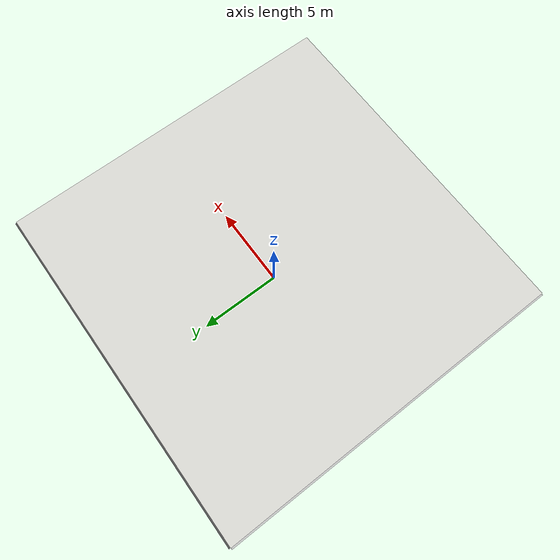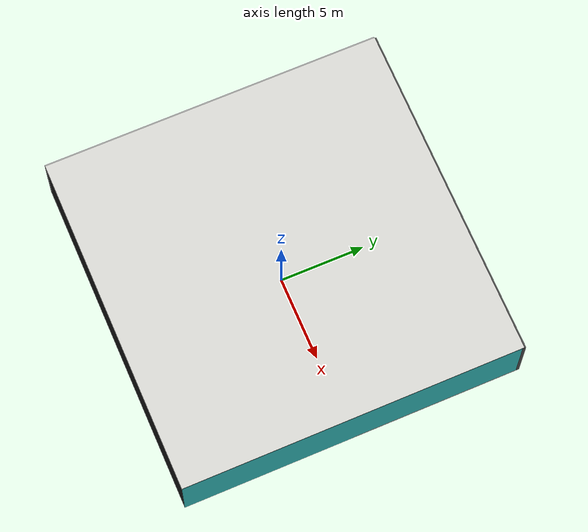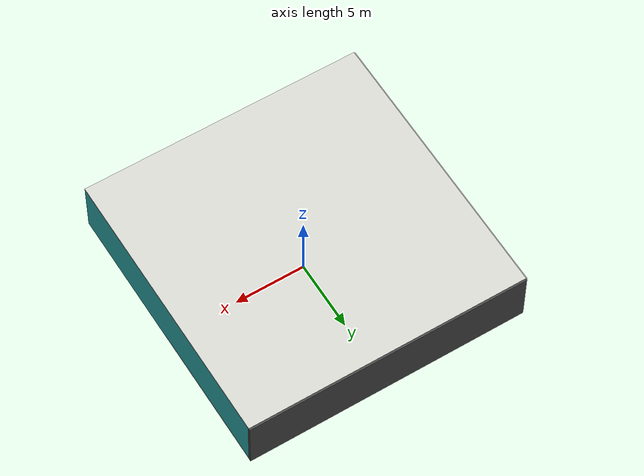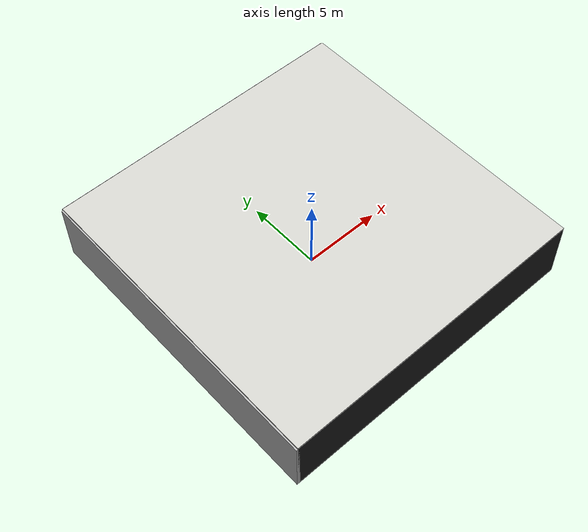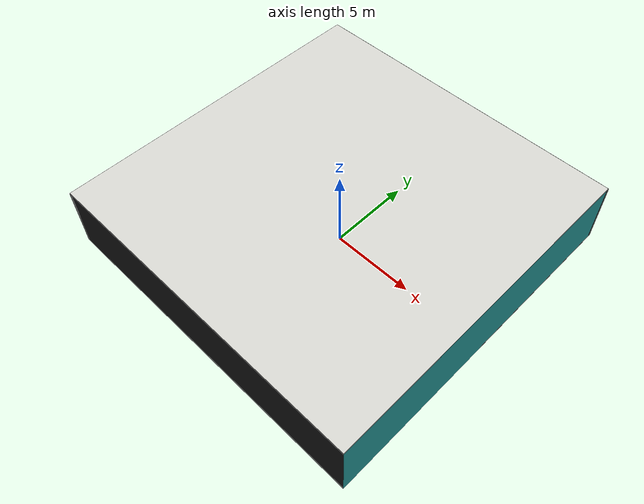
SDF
<sdf version="1.4">
 <world name="default">
  <physics type="ode">
   <max_step_size>0.001</max_step_size>
   <real_time_factor>1</real_time_factor>
   <real_time_update_rate>1000</real_time_update_rate>
   <gravity>0 0 -9.8</gravity>
  </physics>
  <scene><ambient>0.4 0.4 0.4 1</ambient><background>0.7 0.7 0.7 1</background><shadows>1</shadows></scene>
  <model name="Surrounding">
   <static>1</static>
   <link name="Ceiling">
    <collision name="Ceiling_Collision"><geometry><box><size>20 20 0.1</size></box></geometry></collision>
    <visual name="Ceiling_Visual">
     <geometry><box><size>20 20 0.1</size></box></geometry>
     <material>
      <script><uri>file://media/materials/scripts/gazebo.material</uri><name>Gazebo/CeilingTiled</name></script>
     </material>
    </visual>
    <pose>0 0 4.05 0 0 0</pose>
   </link>
   <link name="Wall_South">
    <collision name="Wall_South_Collision">
     <geometry><box><size>20 0 4</size></box></geometry>
     <pose>0 0 2 0 -0 0</pose>
    </collision>
    <visual name="Wall_South_Visual">
     <pose>0 0 2 0 -0 0</pose>
     <geometry><box><size>20 0 4</size></box></geometry>
     <material>
      <script><uri>file://media/materials/scripts/gazebo.material</uri><name>Gazebo/Black</name></script>
     </material>
    </visual>
    <velocity_decay><linear>0</linear><angular>0</angular></velocity_decay>
    <pose>0 -10 0 0 -0 0</pose>
   </link>
   <link name="Wall_East">
    <collision name="Wall_21_Collision">
     <geometry><box><size>20 0 4</size></box></geometry>
     <pose>0 0 2 0 -0 0</pose>
    </collision>
    <visual name="Wall_21_Visual">
     <pose>0 0 2 0 -0 0</pose>
     <geometry><box><size>20 0 4</size></box></geometry>
     <material>
      <script><uri>file://media/materials/scripts/gazebo.material</uri><name>Gazebo/Turquoise</name></script>
     </material>
    </visual>
    <velocity_decay><linear>0</linear><angular>0</angular></velocity_decay>
    <pose>10 0 0 0 -0 1.5708</pose>
   </link>
   <link name="Wall_North">
    <collision name="Wall_22_Collision">
     <geometry><box><size>20 0.2 4</size></box></geometry>
     <pose>0 0 2 0 -0 0</pose>
    </collision>
    <visual name="Wall_22_Visual">
     <pose>0 0 2 0 -0 0</pose>
     <geometry><box><size>20 0.2 4</size></box></geometry>
     <material>
      <script><uri>file://media/materials/scripts/gazebo.material</uri><name>Gazebo/Road</name></script>
     </material>
    </visual>
    <velocity_decay><linear>0</linear><angular>0</angular></velocity_decay>
    <pose>0 10 0 0 -0 0</pose>
   </link>
   <link name="Wall_West">
    <collision name="Wall_23_Collision">
     <geometry><box><size>20 0.2 4</size></box></geometry>
     <pose>0 0 2 0 -0 0</pose>
    </collision>
    <visual name="Wall_23_Visual">
     <pose>0 0 2 0 -0 0</pose>
     <geometry><box><size>20 0.2 4</size></box></geometry>
     <material>
      <script><uri>file://media/materials/scripts/gazebo.material</uri><name>Gazebo/CloudySky</name></script>
     </material>
    </visual>
    <velocity_decay><linear>0</linear><angular>0</angular></velocity_decay>
    <pose>-10 0 0 0 0 -1.5708</pose>
   </link>
   <link name="Ground_link">
    <collision name="collision">
     <pose>0 0 .05 0 -0 0</pose>
     <geometry><box><size>20 20 0.1</size></box></geometry>
    </collision>
    <visual name="visual">
     <pose>0 0 .05 0 -0 0</pose>
     <geometry><box><size>20 20 0.1</size></box></geometry>
     <material>
      <script><uri>file://media/materials/scripts/gazebo.material</uri><name>Gazebo/Black</name></script>
     </material>
    </visual>
   </link>
   <static>1</static>
  </model>
  <spherical_coordinates>
   <surface_model>EARTH_WGS84</surface_model>
   <latitude_deg>0</latitude_deg>
   <longitude_deg>0</longitude_deg>
   <elevation>0</elevation>
   <heading_deg>0</heading_deg>
  </spherical_coordinates>
  <light name="lightball_0" type="diffuse">
   <diffuse>0.8 0.8 0.8 1</diffuse>
   <specular>0.2 0.2 0.2 1</specular>
   <attenuation>
    <range>100</range>
    <constant>0.7</constant>
    <linear>0.01</linear>
    <quadratic>0.001</quadratic>
   </attenuation>
   <direction>-0.5 0.1 -0.9</direction>
   <pose>-2.76330473561 -6.65100457266 2.59917427508 0 0 0</pose>
  </light>
  <light name="lightball_1" type="diffuse">
   <diffuse>0.8 0.8 0.8 1</diffuse>
   <specular>0.2 0.2 0.2 1</specular>
   <attenuation>
    <range>100</range>
    <constant>0.7</constant>
    <linear>0.01</linear>
    <quadratic>0.001</quadratic>
   </attenuation>
   <direction>-0.5 0.1 -0.9</direction>
   <pose>-3.77103143451 7.87645592584 2.75601713917 0 0 0</pose>
  </light>
  <light name="lightball_2" type="diffuse">
   <diffuse>0.8 0.8 0.8 1</diffuse>
   <specular>0.2 0.2 0.2 1</specular>
   <attenuation>
    <range>100</range>
    <constant>0.7</constant>
    <linear>0.01</linear>
    <quadratic>0.001</quadratic>
   </attenuation>
   <direction>-0.5 0.1 -0.9</direction>
   <pose>-6.55583987825 1.42649071541 2.39451830578 0 0 0</pose>
  </light>
  <light name="lightball_3" type="diffuse">
   <diffuse>0.8 0.8 0.8 1</diffuse>
   <specular>0.2 0.2 0.2 1</specular>
   <attenuation>
    <range>100</range>
    <constant>0.7</constant>
    <linear>0.01</linear>
    <quadratic>0.001</quadratic>
   </attenuation>
   <direction>-0.5 0.1 -0.9</direction>
   <pose>-7.02942362311 -5.30311745632 1.26972713595 0 0 0</pose>
  </light>
  <light name="lightball_4" type="diffuse">
   <diffuse>0.8 0.8 0.8 1</diffuse>
   <specular>0.2 0.2 0.2 1</specular>
   <attenuation>
    <range>100</range>
    <constant>0.7</constant>
    <linear>0.01</linear>
    <quadratic>0.001</quadratic>
   </attenuation>
   <direction>-0.5 0.1 -0.9</direction>
   <pose>-8.04350715509 1.22169344275 3.43990323578 0 0 0</pose>
  </light>
  <light name="lightball_5" type="diffuse">
   <diffuse>0.8 0.8 0.8 1</diffuse>
   <specular>0.2 0.2 0.2 1</specular>
   <attenuation>
    <range>100</range>
    <constant>0.7</constant>
    <linear>0.01</linear>
    <quadratic>0.001</quadratic>
   </attenuation>
   <direction>-0.5 0.1 -0.9</direction>
   <pose>3.07001644105 9.57921117661 0.51075608337 0 0 0</pose>
  </light>
  <light name="lightball_6" type="diffuse">
   <diffuse>0.8 0.8 0.8 1</diffuse>
   <specular>0.2 0.2 0.2 1</specular>
   <attenuation>
    <range>100</range>
    <constant>0.7</constant>
    <linear>0.01</linear>
    <quadratic>0.001</quadratic>
   </attenuation>
   <direction>-0.5 0.1 -0.9</direction>
   <pose>-9.88622447581 0.0259167132637 1.52810346203 0 0 0</pose>
  </light>
  <light name="lightball_7" type="diffuse">
   <diffuse>0.8 0.8 0.8 1</diffuse>
   <specular>0.2 0.2 0.2 1</specular>
   <attenuation>
    <range>100</range>
    <constant>0.7</constant>
    <linear>0.01</linear>
    <quadratic>0.001</quadratic>
   </attenuation>
   <direction>-0.5 0.1 -0.9</direction>
   <pose>-7.50565822275 4.27150805905 3.11459946013 0 0 0</pose>
  </light>
  <light name="lightball_8" type="diffuse">
   <diffuse>0.8 0.8 0.8 1</diffuse>
   <specular>0.2 0.2 0.2 1</specular>
   <attenuation>
    <range>100</range>
    <constant>0.7</constant>
    <linear>0.01</linear>
    <quadratic>0.001</quadratic>
   </attenuation>
   <direction>-0.5 0.1 -0.9</direction>
   <pose>2.35984470918 -2.62100772147 2.32926648274 0 0 0</pose>
  </light>
  <light name="lightball_9" type="diffuse">
   <diffuse>0.8 0.8 0.8 1</diffuse>
   <specular>0.2 0.2 0.2 1</specular>
   <attenuation>
    <range>100</range>
    <constant>0.7</constant>
    <linear>0.01</linear>
    <quadratic>0.001</quadratic>
   </attenuation>
   <direction>-0.5 0.1 -0.9</direction>
   <pose>-0.569514994094 -3.95164732832 1.49863209378 0 0 0</pose>
  </light>
  <light name="lightball_10" type="diffuse">
   <diffuse>0.8 0.8 0.8 1</diffuse>
   <specular>0.2 0.2 0.2 1</specular>
   <attenuation>
    <range>100</range>
    <constant>0.7</constant>
    <linear>0.01</linear>
    <quadratic>0.001</quadratic>
   </attenuation>
   <direction>-0.5 0.1 -0.9</direction>
   <pose>6.88519552743 -1.29971581139 3.08866967534 0 0 0</pose>
  </light>
  <light name="lightball_11" type="diffuse">
   <diffuse>0.8 0.8 0.8 1</diffuse>
   <specular>0.2 0.2 0.2 1</specular>
   <attenuation>
    <range>100</range>
    <constant>0.7</constant>
    <linear>0.01</linear>
    <quadratic>0.001</quadratic>
   </attenuation>
   <direction>-0.5 0.1 -0.9</direction>
   <pose>-2.73324233172 4.53665003302 2.47215131597 0 0 0</pose>
  </light>
  <light name="lightball_12" type="diffuse">
   <diffuse>0.8 0.8 0.8 1</diffuse>
   <specular>0.2 0.2 0.2 1</specular>
   <attenuation>
    <range>100</range>
    <constant>0.7</constant>
    <linear>0.01</linear>
    <quadratic>0.001</quadratic>
   </attenuation>
   <direction>-0.5 0.1 -0.9</direction>
   <pose>-0.579517135254 5.34291952123 1.41470223722 0 0 0</pose>
  </light>
  <include>
   <uri>model://robocup_3Dsim_goal</uri>
   <pose>-4.06586310401 -7.39964367442 0 0 0 2.00094734017</pose>
  </include>
  <include><uri>model://cabinet</uri><pose>-3.89370483471 -5.30819297933 0 0 0 1.01968795174</pose></include>
  <include>
   <uri>model://textured_shapes</uri>
   <pose>-5.1525725017 1.23729608026 0 0 0 1.43782999958</pose>
  </include>
  <include><uri>model://cabinet</uri><pose>-3.66198081224 5.58808296321 0 0 0 0.335913112243</pose></include>
  <include><uri>model://cabinet</uri><pose>-3.33288043881 6.87893586929 0 0 0 0.15377995653</pose></include>
  <include>
   <uri>model://construction_cone</uri>
   <pose>-0.963640428225 1.76279190848 0 0 0 0.418774222785</pose>
  </include>
  <include><uri>model://cabinet</uri><pose>0.376515373315 1.68301692259 0 0 0 2.5627345666</pose></include>
  <include><uri>model://table</uri><pose>4.84564570183 7.8211922024 0 0 0 0.467221888758</pose></include>
 </world>
</sdf>

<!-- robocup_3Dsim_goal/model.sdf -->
<sdf version="1.5">
  <model name="robocup_3d_goal">
    <static>true</static>
    <link name="left_post">
      <pose>0 1.05 0.45 0 0 0</pose>
      <collision name="collision">
        <geometry>
          <cylinder>
            <radius>0.05</radius>
            <length>0.9</length>
          </cylinder>
        </geometry>
      </collision>
      <visual name="visual">
        <geometry>
          <cylinder>
            <radius>0.05</radius>
            <length>0.9</length>
          </cylinder>
        </geometry>
        <material>
          <script>
            <uri>file://media/materials/scripts/gazebo.material</uri>
            <name>Gazebo/ZincYellow</name>
          </script>
        </material>
      </visual>
    </link>
    <link name="left_support_horiz_lower">
      <pose>0.30 1.05 0.01 0 0 0</pose>
      <collision name="collision">
        <geometry>
          <box>
            <size>0.50 0.02 0.02</size>
          </box>
        </geometry>
      </collision>
      <visual name="visual">
        <geometry>
          <box>
            <size>0.50 0.02 0.02</size>
          </box>
        </geometry>
        <material>
          <script>
            <uri>file://media/materials/scripts/gazebo.material</uri>
            <name>Gazebo/White</name>
          </script>
        </material>
      </visual>
    </link>
    <link name="left_support_horiz_upper">
      <pose>0.30 1.05 0.79 0 0 0</pose>
      <collision name="collision">
        <geometry>
          <box>
            <size>0.50 0.02 0.02</size>
          </box>
        </geometry>
      </collision>
      <visual name="visual">
        <geometry>
          <box>
            <size>0.50 0.02 0.02</size>
          </box>
        </geometry>
        <material>
          <script>
            <uri>file://media/materials/scripts/gazebo.material</uri>
            <name>Gazebo/White</name>
          </script>
        </material>
      </visual>
    </link>
    <link name="left_support_vertical">
      <pose>0.56 1.05 0.4 0 1.5708 0</pose>
      <collision name="collision">
        <geometry>
          <box>
            <size>0.80 0.02 0.02</size>
          </box>
        </geometry>
      </collision>
      <visual name="visual">
        <geometry>
          <box>
            <size>0.80 0.02 0.02</size>
          </box>
        </geometry>
        <material>
          <script>
            <uri>file://media/materials/scripts/gazebo.material</uri>
            <name>Gazebo/White</name>
          </script>
        </material>
      </visual>
    </link>
    <link name="right_support_horiz_lower">
      <pose>0.30 -1.05 0.01 0 0 0</pose>
      <collision name="collision">
        <geometry>
          <box>
            <size>0.50 0.02 0.02</size>
          </box>
        </geometry>
      </collision>
      <visual name="visual">
        <geometry>
          <box>
            <size>0.50 0.02 0.02</size>
          </box>
        </geometry>
        <material>
          <script>
            <uri>file://media/materials/scripts/gazebo.material</uri>
            <name>Gazebo/White</name>
          </script>
        </material>
      </visual>
    </link>
    <link name="right_support_horiz_upper">
      <pose>0.30 -1.05 0.79 0 0 0</pose>
      <collision name="collision">
        <geometry>
          <box>
            <size>0.50 0.02 0.02</size>
          </box>
        </geometry>
      </collision>
      <visual name="visual">
        <geometry>
          <box>
            <size>0.50 0.02 0.02</size>
          </box>
        </geometry>
        <material>
          <script>
            <uri>file://media/materials/scripts/gazebo.material</uri>
            <name>Gazebo/White</name>
          </script>
        </material>
      </visual>
    </link>
    <link name="right_support_vertical">
      <pose>0.56 -1.05 0.4 0 1.5708 0</pose>
      <collision name="collision">
        <geometry>
          <box>
            <size>0.80 0.02 0.02</size>
          </box>
        </geometry>
      </collision>
      <visual name="visual">
        <geometry>
          <box>
            <size>0.80 0.02 0.02</size>
          </box>
        </geometry>
        <material>
          <script>
            <uri>file://media/materials/scripts/gazebo.material</uri>
            <name>Gazebo/White</name>
          </script>
        </material>
      </visual>
    </link>
    <link name="center_support_horiz_lower">
      <pose>0.56 0 0.01 0 1.5708 0</pose>
      <collision name="collision">
        <geometry>
          <box>
            <size>0.02 2.08 0.02</size>
          </box>
        </geometry>
      </collision>
      <visual name="visual">
        <geometry>
          <box>
            <size>0.02 2.08 0.02</size>
          </box>
        </geometry>
        <material>
          <script>
            <uri>file://media/materials/scripts/gazebo.material</uri>
            <name>Gazebo/White</name>
          </script>
        </material>
      </visual>
    </link>
    <link name="center_support_horiz_upper">
      <pose>0.56 0 0.79 0 1.5708 0</pose>
      <collision name="collision">
        <geometry>
          <box>
            <size>0.02 2.08 0.02</size>
          </box>
        </geometry>
      </collision>
      <visual name="visual">
        <geometry>
          <box>
            <size>0.02 2.08 0.02</size>
          </box>
        </geometry>
        <material>
          <script>
            <uri>file://media/materials/scripts/gazebo.material</uri>
            <name>Gazebo/White</name>
          </script>
        </material>
      </visual>
    </link>
    <link name="right_post">
      <pose>0 -1.05 0.45 0 0 0</pose>
      <collision name="collision">
        <geometry>
          <cylinder>
            <radius>0.05</radius>
            <length>0.9</length>
          </cylinder>
        </geometry>
      </collision>
      <visual name="visual">
        <geometry>
          <cylinder>
            <radius>0.05</radius>
            <length>0.9</length>
          </cylinder>
        </geometry>
        <material>
          <script>
            <uri>file://media/materials/scripts/gazebo.material</uri>
            <name>Gazebo/ZincYellow</name>
          </script>
        </material>
      </visual>
    </link>
    <link name="crossbar">
      <pose>0 0 0.85 1.57 1.57 0</pose>
      <collision name="collision">
        <geometry>
          <cylinder>
            <radius>0.05</radius>
            <length>2.0</length>
          </cylinder>
        </geometry>
      </collision>
      <visual name="visual">
        <geometry>
          <cylinder>
            <radius>0.05</radius>
            <length>2.0</length>
          </cylinder>
        </geometry>
        <material>
          <script>
            <uri>file://media/materials/scripts/gazebo.material</uri>
            <name>Gazebo/ZincYellow</name>
          </script>
        </material>
      </visual>
    </link>
    <link name="center_net">
      <pose>0.56 0 0.40 0 0 0</pose>
      <collision name="collision">
        <geometry>
          <box>
            <size>0.01 2.1 0.80</size>
          </box>
        </geometry>
      </collision>
      <visual name="visual">
        <geometry>
          <box>
            <size>0.01 2.1 0.80</size>
          </box>
        </geometry>
        <material>
          <script>
            <uri>model://../model_source/models/robocup09_spl_field/materials/scripts/</uri>
            <uri>model://../model_source/models/robocup09_spl_field/materials/textures/</uri>
            <name>RoboCup/Net</name>
          </script>
        </material>
      </visual>
    </link>
    <link name="left_net">
      <pose>0.30 1.05 0.40 0 0 0</pose>
      <collision name="collision">
        <geometry>
          <box>
            <size>0.50 0.01 0.76</size>
          </box>
        </geometry>
      </collision>
      <visual name="visual">
        <geometry>
          <box>
            <size>0.50 0.01 0.76</size>
          </box>
        </geometry>
        <material>
          <script>
            <uri>model://../model_source/models/robocup09_spl_field/materials/scripts/</uri>
            <uri>model://../model_source/models/robocup09_spl_field/materials/textures/</uri>
            <name>RoboCup/Net</name>
          </script>
        </material>
      </visual>
    </link>
    <link name="right_net">
      <pose>0.30 -1.05 0.40 0 0 0</pose>
      <collision name="collision">
        <geometry>
          <box>
            <size>0.50 0.01 0.76</size>
          </box>
        </geometry>
      </collision>
      <visual name="visual">
        <geometry>
          <box>
            <size>0.50 0.01 0.76</size>
          </box>
        </geometry>
        <material>
          <script>
            <uri>model://../model_source/models/robocup09_spl_field/materials/scripts/</uri>
            <uri>model://../model_source/models/robocup09_spl_field/materials/textures/</uri>
            <name>RoboCup/Net</name>
          </script>
        </material>
      </visual>
    </link>
  </model>
</sdf>

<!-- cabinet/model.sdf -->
<sdf version="1.5">
  <model name="cabinet">
    <static>true</static>
    <link name="cabinet_bottom_plate">
      <inertial>
        <pose>0 0 -1 0 0 0</pose>
        <inertia>
          <ixx>2.050000</ixx>
          <ixy>0</ixy>
          <ixz>0</ixz>
          <iyy>2.050000</iyy>
          <iyz>0</iyz>
          <izz>2.050000</izz>
        </inertia>
        <mass>25.000000</mass>
      </inertial>
      <collision name="cabinet_bottom_plate_geom">
        <pose>0 0 0.010000 0 0 0</pose>
        <geometry>
          <box>
            <size>0.450000 0.450000 0.020000</size>
          </box>
        </geometry>
      </collision>
      <visual name="cabinet_bottom_plate_geom_visual">
        <pose>0 0 0.010000 0 0 0</pose>
        <geometry>
          <box>
            <size>0.450000 0.450000 0.020000</size>
          </box>
        </geometry>
        <material>
          <script>
            <uri>model://media/materials/scripts/gazebo.material</uri>
            <name>Gazebo/Wood</name>
          </script>
        </material>
      </visual>
      <collision name="cabinet_bottom_plate_geom_cabinet_back_plate">
        <pose>0.235000 0 0.510000 0 0 0</pose>
        <geometry>
          <box>
            <size>0.020000 0.450000 1.020000</size>
          </box>
        </geometry>
      </collision>
      <visual name="cabinet_bottom_plate_geom_cabinet_back_plate_visual">
        <pose>0.235000 0 0.510000 0 0 0</pose>
        <geometry>
          <box>
            <size>0.020000 0.450000 1.020000</size>
          </box>
        </geometry>
        <material>
          <script>
            <uri>model://media/materials/scripts/gazebo.material</uri>
            <name>Gazebo/Wood</name>
          </script>
        </material>
      </visual>
      <collision name="cabinet_bottom_plate_geom_cabinet_left_plate">
        <pose>0 0.235000 0.510000 0 0 0</pose>
        <geometry>
          <box>
            <size>0.450000 0.020000 1.020000</size>
          </box>
        </geometry>
      </collision>
      <visual name="cabinet_bottom_plate_geom_cabinet_left_plate_visual">
        <pose>0 0.235000 0.510000 0 0 0</pose>
        <geometry>
          <box>
            <size>0.450000 0.020000 1.020000</size>
          </box>
        </geometry>
        <material>
          <script>
            <uri>model://media/materials/scripts/gazebo.material</uri>
            <name>Gazebo/Wood</name>
          </script>
        </material>
      </visual>
      <collision name="cabinet_bottom_plate_geom_cabinet_middle_plate">
        <pose>0 0 0.510000 0 0 0</pose>
        <geometry>
          <box>
            <size>0.450000 0.450000 0.020000</size>
          </box>
        </geometry>
      </collision>
      <visual name="cabinet_bottom_plate_geom_cabinet_middle_plate_visual">
        <pose>0 0 0.510000 0 0 0</pose>
        <geometry>
          <box>
            <size>0.450000 0.450000 0.020000</size>
          </box>
        </geometry>
        <material>
          <script>
            <uri>model://media/materials/scripts/gazebo.material</uri>
            <name>Gazebo/Wood</name>
          </script>
        </material>
      </visual>
      <collision name="cabinet_bottom_plate_geom_cabinet_right_plate">
        <pose>0 -0.235000 0.510000 0 0 0</pose>
        <geometry>
          <box>
            <size>0.450000 0.020000 1.020000</size>
          </box>
        </geometry>
      </collision>
      <visual name="cabinet_bottom_plate_geom_cabinet_right_plate_visual">
        <pose>0 -0.235000 0.510000 0 0 0</pose>
        <geometry>
          <box>
            <size>0.450000 0.020000 1.020000</size>
          </box>
        </geometry>
        <material>
          <script>
            <uri>model://media/materials/scripts/gazebo.material</uri>
            <name>Gazebo/Wood</name>
          </script>
        </material>
      </visual>
      <collision name="cabinet_bottom_plate_geom_cabinet_top_plate">
        <pose>0 0 1.010000 0 0 0</pose>
        <geometry>
          <box>
            <size>0.450000 0.450000 0.020000</size>
          </box>
        </geometry>
      </collision>
      <visual name="cabinet_bottom_plate_geom_cabinet_top_plate_visual">
        <pose>0 0 1.010000 0 0 0</pose>
        <geometry>
          <box>
            <size>0.450000 0.450000 0.020000</size>
          </box>
        </geometry>
        <material>
          <script>
            <uri>model://media/materials/scripts/gazebo.material</uri>
            <name>Gazebo/Wood</name>
          </script>
        </material>
      </visual>
    </link>
  </model>
</sdf>

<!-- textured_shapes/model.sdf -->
<sdf version="1.6">
  <model name="textured_shapes">
    <pose>0 0 0.5 0 0 0</pose>
    <link name="box">
      <pose>0 -1.5 0 0 0 0</pose>
      <collision name="collision">
        <geometry>
          <box>
            <size>1 1 1</size>
          </box>
        </geometry>
      </collision>
      <visual name="visual">
        <geometry>
          <box>
            <size>1 1 1</size>
          </box>
        </geometry>
        <material>
          <script>
            <uri>model://../model_source/models/textured_shapes/materials/scripts</uri>
            <uri>model://../model_source/models/textured_shapes/materials/textures</uri>
            <name>TexturedShape/Squares</name>
          </script>
        </material>
      </visual>
    </link>
    <link name="sphere">
      <collision name="collision">
        <geometry>
          <sphere>
            <radius>0.5</radius>
          </sphere>
        </geometry>
      </collision>
      <visual name="visual">
        <geometry>
          <sphere>
            <radius>0.5</radius>
          </sphere>
        </geometry>
        <material>
          <script>
            <uri>model://../model_source/models/textured_shapes/materials/scripts</uri>
            <uri>model://../model_source/models/textured_shapes/materials/textures</uri>
            <name>TexturedShape/Squares</name>
          </script>
        </material>
      </visual>
    </link>
    <link name="cylinder">
      <pose>0 1.5 0 0 0 0</pose>
      <collision name="collision">
        <geometry>
          <cylinder>
            <radius>0.5</radius>
            <length>1</length>
          </cylinder>
        </geometry>
      </collision>
      <visual name="visual">
        <geometry>
          <cylinder>
            <radius>0.5</radius>
            <length>1</length>
          </cylinder>
        </geometry>
        <material>
          <script>
            <uri>model://../model_source/models/textured_shapes/materials/scripts</uri>
            <uri>model://../model_source/models/textured_shapes/materials/textures</uri>
            <name>TexturedShape/Squares</name>
          </script>
        </material>
      </visual>
    </link>
  </model>
</sdf>

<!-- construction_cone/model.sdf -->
<sdf version="1.5">
  <model name="Construction Cone">
    <link name="link">
      <collision name="collision">
        <geometry>
          <mesh>
            <scale>10 10 10</scale>
            <uri>file://isr-testbed/construction_cone/meshes/construction_cone.dae</uri>
          </mesh>
        </geometry>
      </collision>
      <visual name="visual">
        <geometry>
          <mesh>
            <scale>10 10 10</scale>
            <uri>file://isr-testbed/construction_cone/meshes/construction_cone.dae</uri>
          </mesh>
        </geometry>
      </visual>
    </link>
  </model>
</sdf>

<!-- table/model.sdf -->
<sdf version="1.5">
  <model name="table">
    <static>true</static>
    <link name="link">
      <collision name="surface">
        <pose>0 0 1.0 0 0 0</pose>
        <geometry>
          <box>
            <size>1.5 0.8 0.03</size>
          </box>
        </geometry>
        <surface>
          <friction>
            <ode>
              <mu>0.6</mu>
              <mu2>0.6</mu2>
            </ode>
          </friction>
        </surface>
      </collision>
      <visual name="visual1">
        <pose>0 0 1.0 0 0 0</pose>
        <geometry>
          <box>
            <size>1.5 0.8 0.03</size>
          </box>
        </geometry>
        <material>
          <script>
            <uri>model://media/materials/scripts/gazebo.material</uri>
            <name>Gazebo/Wood</name>
          </script>
        </material>
      </visual>
      <collision name="front_left_leg">
        <pose>0.68 0.38 0.5 0 0 0</pose>
        <geometry>
          <cylinder>
            <radius>0.02</radius>
            <length>1.0</length>
          </cylinder>
        </geometry>
      </collision>
      <visual name="front_left_leg">
        <pose>0.68 0.38 0.5 0 0 0</pose>
        <geometry>
          <cylinder>
            <radius>0.02</radius>
            <length>1.0</length>
          </cylinder>
        </geometry>
        <material>
          <script>
            <uri>model://media/materials/scripts/gazebo.material</uri>
            <name>Gazebo/Grey</name>
          </script>
        </material>
      </visual>
      <collision name="front_right_leg">
        <pose>0.68 -0.38 0.5 0 0 0</pose>
        <geometry>
          <cylinder>
            <radius>0.02</radius>
            <length>1.0</length>
          </cylinder>
        </geometry>
      </collision>
      <visual name="front_right_leg">
        <pose>0.68 -0.38 0.5 0 0 0</pose>
        <geometry>
          <cylinder>
            <radius>0.02</radius>
            <length>1.0</length>
          </cylinder>
        </geometry>
        <material>
          <script>
            <uri>model://media/materials/scripts/gazebo.material</uri>
            <name>Gazebo/Grey</name>
          </script>
        </material>
      </visual>
      <collision name="back_right_leg">
        <pose>-0.68 -0.38 0.5 0 0 0</pose>
        <geometry>
          <cylinder>
            <radius>0.02</radius>
            <length>1.0</length>
          </cylinder>
        </geometry>
      </collision>
      <visual name="back_right_leg">
        <pose>-0.68 -0.38 0.5 0 0 0</pose>
        <geometry>
          <cylinder>
            <radius>0.02</radius>
            <length>1.0</length>
          </cylinder>
        </geometry>
        <material>
          <script>
            <uri>model://media/materials/scripts/gazebo.material</uri>
            <name>Gazebo/Grey</name>
          </script>
        </material>
      </visual>
      <collision name="back_left_leg">
        <pose>-0.68 0.38 0.5 0 0 0</pose>
        <geometry>
          <cylinder>
            <radius>0.02</radius>
            <length>1.0</length>
          </cylinder>
        </geometry>
      </collision>
      <visual name="back_left_leg">
        <pose>-0.68 0.38 0.5 0 0 0</pose>
        <geometry>
          <cylinder>
            <radius>0.02</radius>
            <length>1.0</length>
          </cylinder>
        </geometry>
        <material>
          <script>
            <uri>model://media/materials/scripts/gazebo.material</uri>
            <name>Gazebo/Grey</name>
          </script>
        </material>
      </visual>
    </link>
  </model>
</sdf>
